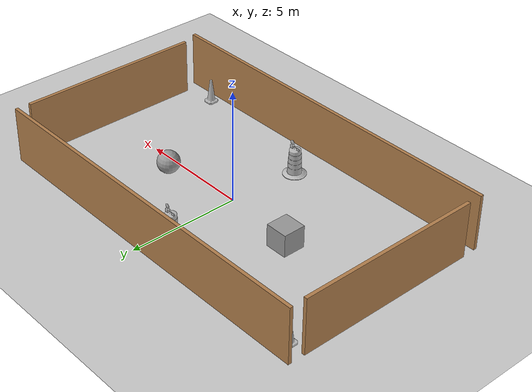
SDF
<sdf version="1.7">
 <world name="default">
  <light name="sun" type="directional">
   <pose>0 0 10 0 -0 0</pose>
   <diffuse>0.8 0.8 0.8 1</diffuse>
   <specular>0.2 0.2 0.2 1</specular>
   <attenuation>
    <range>1000</range>
    <constant>0.9</constant>
    <linear>0.01</linear>
    <quadratic>0.001</quadratic>
   </attenuation>
   <direction>-0.5 0.1 -0.9</direction>
   <spot><inner_angle>0</inner_angle><outer_angle>0</outer_angle><falloff>0</falloff></spot>
  </light>
  <model name="ground_plane">
   <static>1</static>
   <link name="link">
    <collision name="collision">
     <geometry><plane><normal>0 0 1</normal><size>100 100</size></plane></geometry>
     <surface>
      <contact><collide_bitmask>65535</collide_bitmask></contact>
      <friction><ode><mu>100</mu><mu2>50</mu2></ode></friction>
     </surface>
    </collision>
    <visual name="visual">
     <cast_shadows>0</cast_shadows>
     <geometry><plane><normal>0 0 1</normal><size>100 100</size></plane></geometry>
     <material>
      <script><uri>file://media/materials/scripts/gazebo.material</uri><name>Gazebo/Grey</name></script>
     </material>
    </visual>
   </link>
  </model>
  <gravity>0 0 -9.8</gravity>
  <magnetic_field>6e-06 2.3e-05 -4.2e-05</magnetic_field>
  <atmosphere type="adiabatic"/>
  <physics type="ode">
   <max_step_size>0.001</max_step_size>
   <real_time_factor>1</real_time_factor>
   <real_time_update_rate>1000</real_time_update_rate>
  </physics>
  <scene><ambient>0.4 0.4 0.4 1</ambient><background>0.7 0.7 0.7 1</background><shadows>1</shadows></scene>
  <audio><device>default</device></audio>
  <spherical_coordinates>
   <surface_model>EARTH_WGS84</surface_model>
   <latitude_deg>0</latitude_deg>
   <longitude_deg>0</longitude_deg>
   <elevation>0</elevation>
   <heading_deg>0</heading_deg>
  </spherical_coordinates>
  <model name="unit_box">
   <pose>-3.56965 0.450793 0.499995 0 1e-05 0</pose>
   <link name="link">
    <inertial>
     <mass>1</mass>
     <inertia>
      <ixx>0.166667</ixx>
      <ixy>0</ixy>
      <ixz>0</ixz>
      <iyy>0.166667</iyy>
      <iyz>0</iyz>
      <izz>0.166667</izz>
     </inertia>
    </inertial>
    <collision name="collision"><geometry><box><size>1 1 1</size></box></geometry></collision>
    <visual name="visual">
     <geometry><box><size>1 1 1</size></box></geometry>
     <material>
      <script><name>Gazebo/Grey</name><uri>file://media/materials/scripts/gazebo.material</uri></script>
     </material>
    </visual>
   </link>
  </model>
  <model name="unit_sphere">
   <pose>3.29078 0.666006 0.5 -2e-06 -0.071648 1e-06</pose>
   <link name="link">
    <inertial>
     <mass>1</mass>
     <inertia><ixx>0.1</ixx><ixy>0</ixy><ixz>0</ixz><iyy>0.1</iyy><iyz>0</iyz><izz>0.1</izz></inertia>
    </inertial>
    <collision name="collision"><geometry><sphere><radius>0.5</radius></sphere></geometry></collision>
    <visual name="visual">
     <geometry><sphere><radius>0.5</radius></sphere></geometry>
     <material>
      <script><name>Gazebo/Grey</name><uri>file://media/materials/scripts/gazebo.material</uri></script>
     </material>
    </visual>
   </link>
  </model>
  <model name="wall_main">
   <pose>-0.07011 -0.052859 0 0 -0 0</pose>
   <link name="Wall_0">
    <collision name="Wall_0_Collision">
     <geometry><box><size>16.5 0.15 2.5</size></box></geometry>
     <pose>0 0 1.25 0 -0 0</pose>
    </collision>
    <visual name="Wall_0_Visual">
     <pose>0 0 1.25 0 -0 0</pose>
     <geometry><box><size>16.5 0.15 2.5</size></box></geometry>
     <material>
      <script><uri>file://media/materials/scripts/gazebo.material</uri><name>Gazebo/Wood</name></script>
      <ambient>1 1 1 1</ambient>
     </material>
     <meta><layer>0</layer></meta>
    </visual>
    <pose>-0.114943 4.79709 0 0 -0 0</pose>
   </link>
   <link name="Wall_2">
    <collision name="Wall_2_Collision">
     <geometry><box><size>16.75 0.15 2.5</size></box></geometry>
     <pose>0 0 1.25 0 -0 0</pose>
    </collision>
    <visual name="Wall_2_Visual">
     <pose>0 0 1.25 0 -0 0</pose>
     <geometry><box><size>16.75 0.15 2.5</size></box></geometry>
     <material>
      <script><uri>file://media/materials/scripts/gazebo.material</uri><name>Gazebo/Wood</name></script>
      <ambient>1 1 1 1</ambient>
     </material>
     <meta><layer>0</layer></meta>
    </visual>
    <pose>0.010057 -4.79709 0 0 -0 0</pose>
   </link>
   <link name="Wall_4">
    <collision name="Wall_4_Collision">
     <geometry><box><size>8.25 0.15 2.5</size></box></geometry>
     <pose>0 0 1.25 0 -0 0</pose>
    </collision>
    <visual name="Wall_4_Visual">
     <pose>0 0 1.25 0 -0 0</pose>
     <geometry><box><size>8.25 0.15 2.5</size></box></geometry>
     <material>
      <script><uri>file://media/materials/scripts/gazebo.material</uri><name>Gazebo/Wood</name></script>
      <ambient>1 1 1 1</ambient>
     </material>
     <meta><layer>0</layer></meta>
    </visual>
    <pose>-8.31006 0.002885 0 0 -0 -1.5708</pose>
   </link>
   <link name="Wall_6">
    <collision name="Wall_6_Collision">
     <geometry><box><size>8.25 0.15 2.5</size></box></geometry>
     <pose>0 0 1.25 0 -0 0</pose>
    </collision>
    <visual name="Wall_6_Visual">
     <pose>0 0 1.25 0 -0 0</pose>
     <geometry><box><size>8.25 0.15 2.5</size></box></geometry>
     <material>
      <script><uri>file://media/materials/scripts/gazebo.material</uri><name>Gazebo/Wood</name></script>
      <ambient>1 1 1 1</ambient>
     </material>
     <meta><layer>0</layer></meta>
    </visual>
    <pose>8.0825 0.083339 0 0 -0 -1.5708</pose>
   </link>
   <static>1</static>
  </model>
  <model name="Construction Cone">
   <link name="link">
    <collision name="collision">
     <geometry>
      <mesh><scale>10 10 10</scale><uri>model://construction_cone/meshes/construction_cone.dae</uri></mesh>
     </geometry>
    </collision>
    <visual name="visual">
     <geometry>
      <mesh><scale>10 10 10</scale><uri>model://construction_cone/meshes/construction_cone.dae</uri></mesh>
     </geometry>
    </visual>
    <inertial>
     <inertia><ixx>1</ixx><ixy>0</ixy><ixz>0</ixz><iyy>1</iyy><iyz>0</iyz><izz>1</izz></inertia>
     <mass>1</mass>
    </inertial>
   </link>
   <pose>6.49857 -4.3095 -6e-06 2e-06 -0 0</pose>
  </model>
  <model name="Construction Cone_0">
   <link name="link">
    <collision name="collision">
     <geometry>
      <mesh><scale>10 10 10</scale><uri>model://construction_cone/meshes/construction_cone.dae</uri></mesh>
     </geometry>
    </collision>
    <visual name="visual">
     <geometry>
      <mesh><scale>10 10 10</scale><uri>model://construction_cone/meshes/construction_cone.dae</uri></mesh>
     </geometry>
    </visual>
    <inertial>
     <inertia><ixx>1</ixx><ixy>0</ixy><ixz>0</ixz><iyy>1</iyy><iyz>0</iyz><izz>1</izz></inertia>
     <mass>1</mass>
    </inertial>
   </link>
   <pose>-7.62404 -4.10689 -1e-06 3e-06 -1e-06 0</pose>
  </model>
  <model name="Construction Cone_1">
   <link name="link">
    <collision name="collision">
     <geometry>
      <mesh><scale>10 10 10</scale><uri>model://construction_cone/meshes/construction_cone.dae</uri></mesh>
     </geometry>
    </collision>
    <visual name="visual">
     <geometry>
      <mesh><scale>10 10 10</scale><uri>model://construction_cone/meshes/construction_cone.dae</uri></mesh>
     </geometry>
    </visual>
    <inertial>
     <inertia><ixx>1</ixx><ixy>0</ixy><ixz>0</ixz><iyy>1</iyy><iyz>0</iyz><izz>1</izz></inertia>
     <mass>1</mass>
    </inertial>
   </link>
   <pose>-7.64984 4.0489 -0 0 -0 0</pose>
  </model>
  <model name="Construction Cone_2">
   <link name="link">
    <collision name="collision">
     <geometry>
      <mesh><scale>10 10 10</scale><uri>model://construction_cone/meshes/construction_cone.dae</uri></mesh>
     </geometry>
    </collision>
    <visual name="visual">
     <geometry>
      <mesh><scale>10 10 10</scale><uri>model://construction_cone/meshes/construction_cone.dae</uri></mesh>
     </geometry>
    </visual>
    <inertial>
     <inertia><ixx>1</ixx><ixy>0</ixy><ixz>0</ixz><iyy>1</iyy><iyz>0</iyz><izz>1</izz></inertia>
     <mass>1</mass>
    </inertial>
   </link>
   <pose>6.48901 4.31561 -4e-06 4e-06 -1e-06 0</pose>
  </model>
  <model name="Construction Barrel">
   <link name="link">
    <inertial>
     <pose>0 0 0.4 0 -0 0</pose>
     <mass>500</mass>
     <inertia><ixx>51.2096</ixx><iyy>51.2096</iyy><izz>25</izz><ixy>0</ixy><ixz>0</ixz><iyz>0</iyz></inertia>
    </inertial>
    <collision name="collision">
     <geometry><mesh><uri>model://construction_barrel/meshes/construction_barrel.dae</uri></mesh></geometry>
    </collision>
    <visual name="visual">
     <geometry><mesh><uri>model://construction_barrel/meshes/construction_barrel.dae</uri></mesh></geometry>
    </visual>
   </link>
   <pose>-0.211675 -3.18142 0 0 0 -3e-06</pose>
  </model>
  <model name="Construction Barrel_0">
   <link name="link">
    <inertial>
     <pose>0 0 0.4 0 -0 0</pose>
     <mass>500</mass>
     <inertia><ixx>51.2096</ixx><iyy>51.2096</iyy><izz>25</izz><ixy>0</ixy><ixz>0</ixz><iyz>0</iyz></inertia>
    </inertial>
    <collision name="collision">
     <geometry><mesh><uri>model://construction_barrel/meshes/construction_barrel.dae</uri></mesh></geometry>
    </collision>
    <visual name="visual">
     <geometry><mesh><uri>model://construction_barrel/meshes/construction_barrel.dae</uri></mesh></geometry>
    </visual>
   </link>
   <pose>-0.361003 3.43334 -1e-06 3e-06 -2e-06 -2e-06</pose>
  </model>
 </world>
</sdf>
